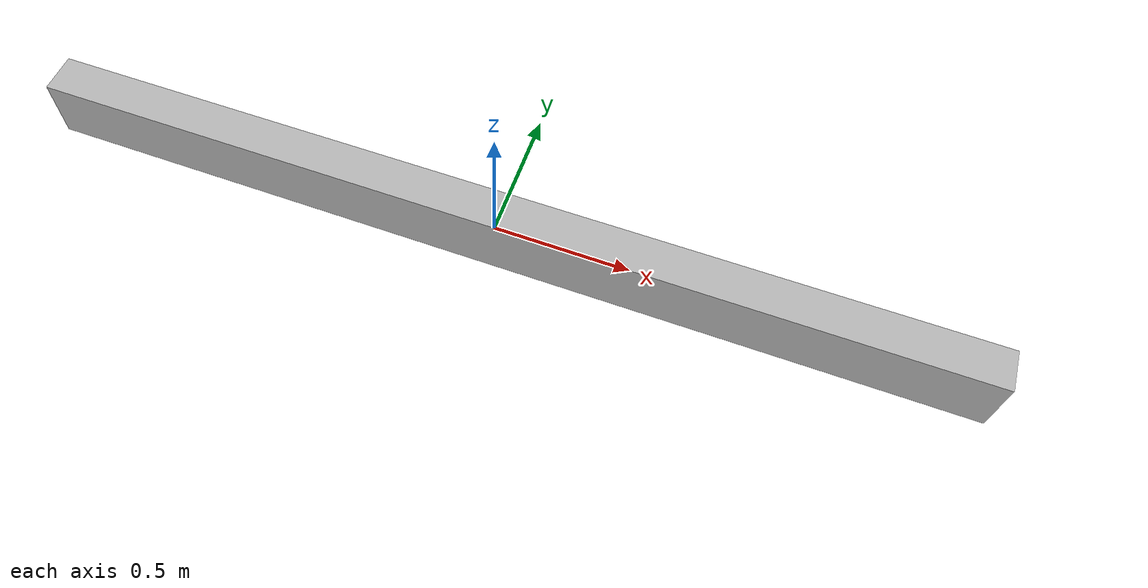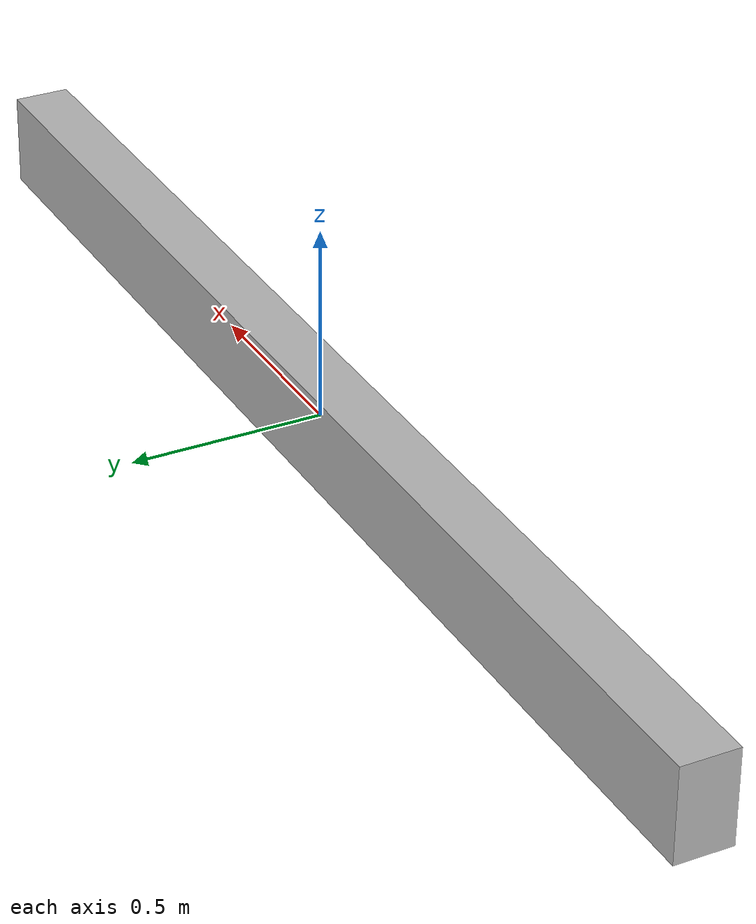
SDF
<?xml version="1.0" ?>
<sdf version="1.5">
  <model name="dia_rail">
    <static>true</static>
    <link name="link">
      <collision name="rail-1">
        <pose>0 0 0 0 0 0</pose>
        <geometry>
          <box>
            <size>3.5 0.15 0.25</size>
          </box>
        </geometry>
      </collision>
      <visual name="rail-visual-1">
        <pose>0 0 0 0 0 0</pose>
        <geometry>
          <box>
            <size>3.5 0.15 0.25</size>
          </box>
        </geometry>
        <material>
          <script>
            <uri>model://dia_rail/materials/scripts</uri>
            <uri>model://dia_rail/materials/textures</uri>
            <name>dia_rail/Diffuse</name>
          </script>
        </material>
      </visual>
    </link>
  </model>
</sdf>
